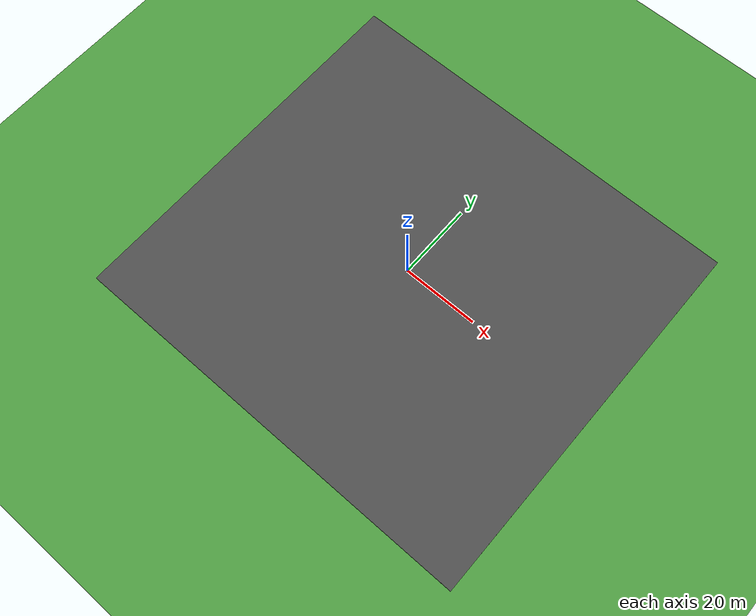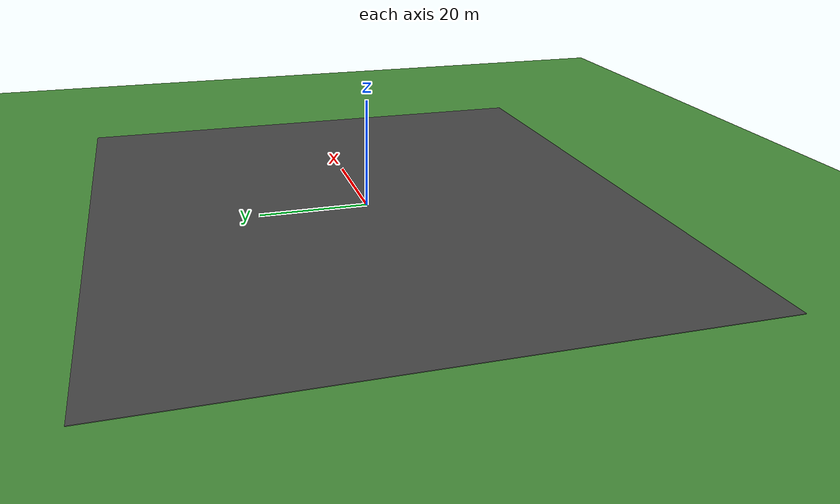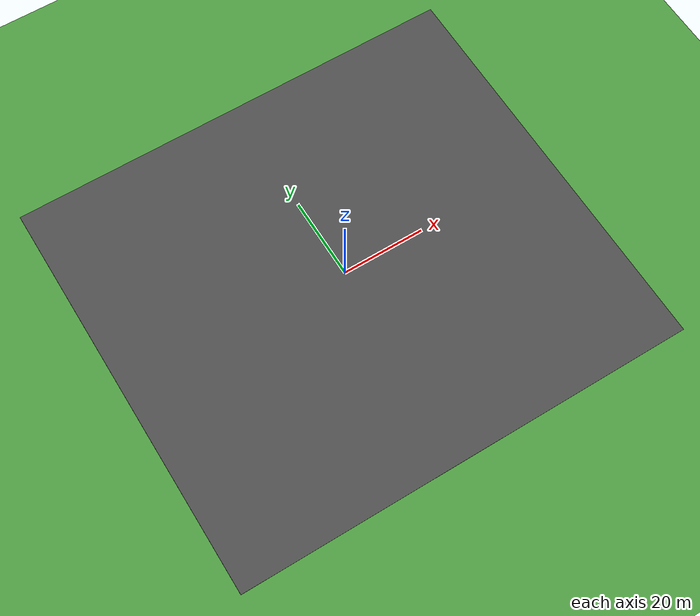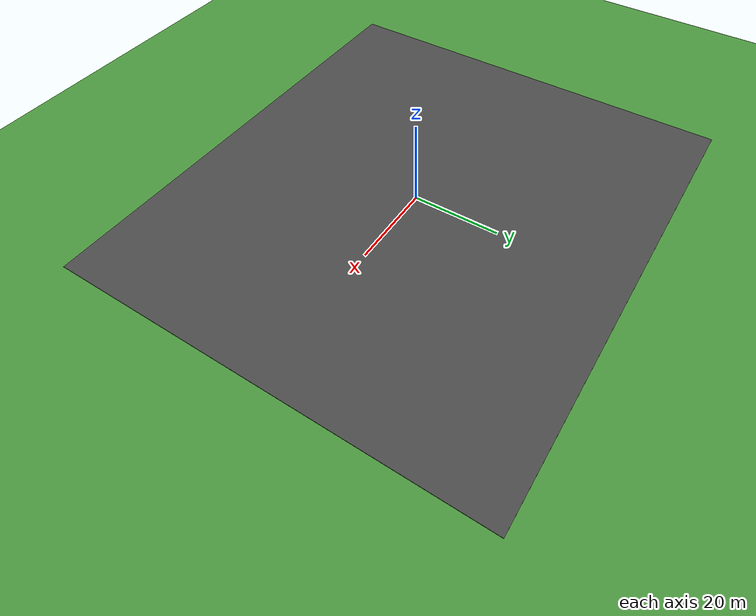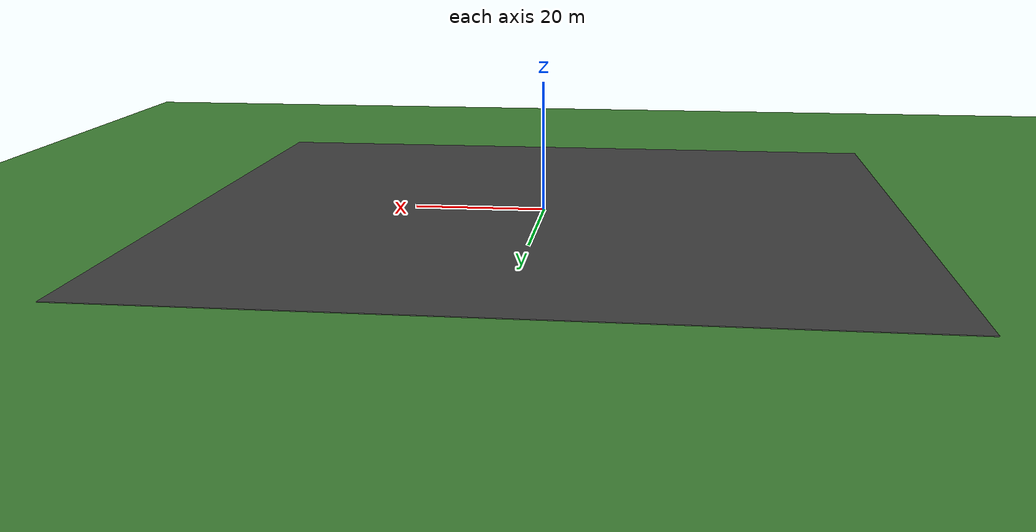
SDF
<?xml version="1.0" ?>
<sdf version="1.6">
  <world name="default">

    <!-- ================= Physics ================= -->
    <physics name="default_physics" type="ode">
      <gravity>0 0 -9.8066</gravity>
      <ode>
        <solver>
          <type>quick</type>
          <iters>100</iters>
          <sor>1.0</sor>
        </solver>
        <constraints>
          <cfm>0.0</cfm>
          <erp>0.9</erp>
          <contact_max_correcting_vel>0.1</contact_max_correcting_vel>
          <contact_surface_layer>0.0</contact_surface_layer>
        </constraints>
      </ode>
      <real_time_update_rate>-1</real_time_update_rate>
    </physics>

    <!-- ================= Scene ================= -->
    <scene>
      <ambient>0.6 0.6 0.6 1</ambient>
      <background>0.7 0.7 0.7 1</background>
      <shadows>false</shadows>
    </scene>

    <include>
      <uri>model://sun</uri>
    </include>

    <!-- ================= Grass ================= -->
    <model name="grass_plane">
      <static>true</static>
      <link name="link">

        <collision name="collision">
          <geometry>
            <plane>
              <normal>0 0 1</normal>
              <size>5000 5000</size>
            </plane>
          </geometry>
        </collision>

        <visual name="visual">
          <pose>0 0 -0.25 0 0 0</pose>
          <cast_shadows>false</cast_shadows>
          <geometry>
            <plane>
              <normal>0 0 1</normal>
              <size>5000 5000</size>
            </plane>
          </geometry>
          <material>
            <script>
              <uri>file://media/materials/scripts/gazebo.material</uri>
              <name>Gazebo/Grass</name>
            </script>
          </material>
        </visual>

      </link>
    </model>

    <!-- ================= Asphalt Pad ================= -->
    <model name="asphalt_pad">
      <static>true</static>
      <link name="link">

        <!-- ✅ COLLISION: PLANE (NO EDGES, SAFE TAKEOFF) -->
        <collision name="collision">
          <geometry>
            <plane>
              <normal>0 0 1</normal>
              <size>200 200</size>
            </plane>
          </geometry>

          <!-- EXACT SAME PHYSICS AS YOUR WORKING RUNWAY -->
          <surface>
            <friction>
              <ode>
                <mu>1</mu>
                <mu2>1</mu2>
              </ode>
            </friction>
          </surface>
        </collision>

        <!-- VISUAL: textured asphalt -->
        <visual name="visual">
          <pose>0 0 0.01 0 0 0</pose>
          <cast_shadows>false</cast_shadows>
          <geometry>
            <box>
              <size>110 100 0.1</size>
            </box>
          </geometry>

          <material>
            <script>
              <uri>model://asphalt_plane/materials/scripts</uri>
              <uri>model://asphalt_plane/materials/textures</uri>
              <name>vrc/asphalt</name>
            </script>
            <ambient>0.5 0.5 0.5 1</ambient>
            <diffuse>0.6 0.6 0.6 1</diffuse>
            <specular>0.1 0.1 0.1 1</specular>
          </material>
        </visual>

      </link>
    </model>

  </world>
</sdf>
